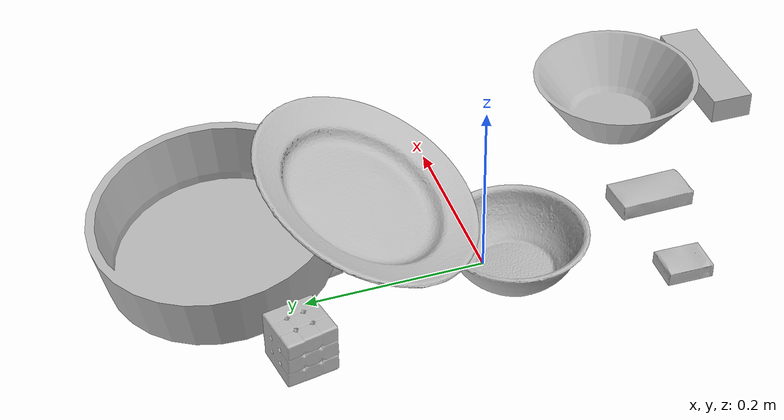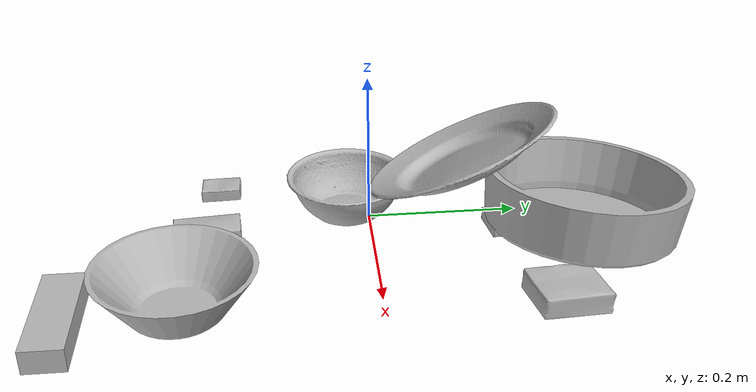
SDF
<sdf version="1.4">
  <world name="default">
    <light name="light1" type="point">
      <pose>0 0 1 0 0 0</pose>
      <diffuse>3 3 3 1</diffuse>
      <specular>3 3 3 1</specular>
    </light>
    <light name="light2" type="point">
      <pose>0 0.5 2 0 0 0</pose>
      <diffuse>1 1 1 1</diffuse>
      <specular>1 1 1 1</specular>
    </light>
    <light name="light3" type="point">
      <pose>0 0.5 2 0 0 0</pose>
      <diffuse>3 3 3 1</diffuse>
      <specular>3 3 3 1</specular>
    </light>
    <scene>
      <ambient>0.7 0.7 0.7</ambient>
    </scene>
    <model name="box1">
      <link name="link_box1">
        <collision name="default">
          <geometry>
            <mesh>
              <uri>model://sugar_box/collision_meshes/collision.obj</uri>
              <scale>0.5 0.5 0.5</scale>
            </mesh>
          </geometry>
          <surface>
            <friction>
              <ode>
                <mu>0.5</mu>
                <mu2>0.5</mu2>
              </ode>
            </friction>
          <contact>
        <ode>
            <max_vel>0</max_vel>
            <min_depth>0.0001</min_depth>
            <kp>1e8</kp>
        </ode>
    </contact></surface>
        </collision>
        <visual name="default">
          <geometry>
            <mesh>
              <uri>model://sugar_box/visual_meshes/visual.dae</uri>
              <scale>0.5 0.5 0.5</scale>
            </mesh>
          </geometry>
        </visual>
        <inertial>
          <mass>0.05968111753463745</mass>
          <pose>0.0005171863595023751 1.924554817378521e-05 -0.00018182402709499002 -0.00040462627153530444 0.0010506635220302928 0.002615378323275012</pose>
          <inertia>
            <ixx>1.2431535e-05</ixx>
            <iyy>4.0181283e-05</iyy>
            <izz>4.8101785e-05</izz>
            <ixy>0</ixy>
            <ixz>0</ixz>
            <iyz>0</iyz>
          </inertia>
        </inertial>
      </link>
      <pose>0.037669748067855835 -0.21472908556461334 0.011399300768971443 0.0007752500313289545 -0.023432416988059236 1.615498465160125</pose>
    </model>
    <model name="box11">
      <link name="link_box11">
        <collision name="default">
          <geometry>
            <mesh>
              <uri>model://cracker_box/collision_meshes/collision.obj</uri>
              <scale>0.25 0.25 0.25</scale>
            </mesh>
          </geometry>
          <surface>
            <friction>
              <ode>
                <mu>0.5</mu>
                <mu2>0.5</mu2>
              </ode>
            </friction>
          <contact>
        <ode>
            <max_vel>0</max_vel>
            <min_depth>0.0001</min_depth>
            <kp>1e8</kp>
        </ode>
    </contact></surface>
        </collision>
        <visual name="default">
          <geometry>
            <mesh>
              <uri>model://cracker_box/visual_meshes/visual.dae</uri>
              <scale>0.25 0.25 0.25</scale>
            </mesh>
          </geometry>
        </visual>
        <inertial>
          <mass>0.04741516709327698</mass>
          <pose>0.0002366035187151283 6.358561950037256e-05 -0.0004257383698131889 -0.00031620780351981393 -0.01110649053153066 0.0025467950031323855</pose>
          <inertia>
            <ixx>7.537689e-06</ixx>
            <iyy>1.2446206e-05</iyy>
            <izz>1.7761875e-05</izz>
            <ixy>0</ixy>
            <ixz>0</ixz>
            <iyz>0</iyz>
          </inertia>
        </inertial>
      </link>
      <pose>-0.0795268714427948 -0.2003558874130249 0.009120449423789978 -0.011788025121909585 -0.007367176819784792 1.5710181147674713</pose>
    </model>
    <model name="box2">
      <link name="link_box2">
        <collision name="default">
          <geometry>
            <mesh>
              <uri>model://jenga/collision_meshes/collision.obj</uri>
              <scale>1.0 1.0 1.0</scale>
            </mesh>
          </geometry>
          <surface>
            <friction>
              <ode>
                <mu>0.5</mu>
                <mu2>0.5</mu2>
              </ode>
            </friction>
          <contact>
        <ode>
            <max_vel>0</max_vel>
            <min_depth>0.0001</min_depth>
            <kp>1e8</kp>
        </ode>
    </contact></surface>
        </collision>
        <visual name="default">
          <geometry>
            <mesh>
              <uri>model://jenga/visual_meshes/visual.dae</uri>
              <scale>1.0 1.0 1.0</scale>
            </mesh>
          </geometry>
        </visual>
        <inertial>
          <mass>0.17569443583488464</mass>
          <pose>-2.502855807051674e-07 -0.00010250010382151231 -4.0923401684267446e-05 0.0 -7.342153480750062e-07 0.0</pose>
          <inertia>
            <ixx>4.8618913e-05</ixx>
            <iyy>0.00032944046</iyy>
            <izz>0.0003517057</izz>
            <ixy>0</ixy>
            <ixz>0</ixz>
            <iyz>0</iyz>
          </inertia>
        </inertial>
      </link>
      <pose>0.22621329128742218 -0.37519288063049316 0.014999995008111 1.2074997182644783e-08 3.913072392246924e-09 -2.351430521444544e-05</pose>
    </model>
    <model name="box21">
      <link name="link_box21">
        <collision name="default">
          <geometry>
            <mesh>
              <uri>model://rubiks_cube/collision_meshes/collision.obj</uri>
              <scale>1.0 1.0 1.0</scale>
            </mesh>
          </geometry>
          <surface>
            <friction>
              <ode>
                <mu>0.5</mu>
                <mu2>0.5</mu2>
              </ode>
            </friction>
          <contact>
        <ode>
            <max_vel>0</max_vel>
            <min_depth>0.0001</min_depth>
            <kp>1e8</kp>
        </ode>
    </contact></surface>
        </collision>
        <visual name="default">
          <geometry>
            <mesh>
              <uri>model://rubiks_cube/visual_meshes/visual.dae</uri>
              <scale>1.0 1.0 1.0</scale>
            </mesh>
          </geometry>
        </visual>
        <inertial>
          <mass>0.16427944600582123</mass>
          <pose>2.6721041649580002e-05 5.2569666877388954e-05 -7.2643156272533815e-06 -0.05467299197426534 -0.0981400693449792 -0.034455479534688374</pose>
          <inertia>
            <ixx>9.0775415e-05</ixx>
            <iyy>9.0352085e-05</iyy>
            <izz>9.152764e-05</izz>
            <ixy>0</ixy>
            <ixz>0</ixz>
            <iyz>0</iyz>
          </inertia>
        </inertial>
      </link>
      <pose>-0.08122877031564713 0.2255028486251831 0.028679020702838898 9.566650377329487e-08 5.9522758486269305e-08 -1.3680137713417952</pose>
    </model>
    <model name="box3">
      <link name="link_box3">
        <collision name="default">
          <geometry>
            <mesh>
              <uri>model://gelatin_box/collision_meshes/collision.obj</uri>
              <scale>1.0 1.0 1.0</scale>
            </mesh>
          </geometry>
          <surface>
            <friction>
              <ode>
                <mu>0.5</mu>
                <mu2>0.5</mu2>
              </ode>
            </friction>
          <contact>
        <ode>
            <max_vel>0</max_vel>
            <min_depth>0.0001</min_depth>
            <kp>1e8</kp>
        </ode>
    </contact></surface>
        </collision>
        <visual name="default">
          <geometry>
            <mesh>
              <uri>model://gelatin_box/visual_meshes/visual.dae</uri>
              <scale>1.0 1.0 1.0</scale>
            </mesh>
          </geometry>
        </visual>
        <inertial>
          <mass>0.21197354793548584</mass>
          <pose>0.0004319618456065655 0.00011156872642459348 -0.0003640321083366871 -0.0010503719594585892 -0.004755818227500045 0.016440553882781303</pose>
          <inertia>
            <ixx>0.00014963602</ixx>
            <iyy>0.00010688423</iyy>
            <izz>0.00022777937</izz>
            <ixy>0</ixy>
            <ixz>0</ixz>
            <iyz>0</iyz>
          </inertia>
        </inertial>
      </link>
      <pose>0.2272741049528122 0.2154339998960495 0.017164546996355057 0.06768367802501628 0.009957773664432505 -2.9827321919889114</pose>
    </model>
    <model name="box31">
      <link name="link_box31">
        <collision name="default">
          <geometry>
            <mesh>
              <uri>model://pudding_box/collision_meshes/collision.obj</uri>
              <scale>0.5 0.5 0.5</scale>
            </mesh>
          </geometry>
          <surface>
            <friction>
              <ode>
                <mu>0.5</mu>
                <mu2>0.5</mu2>
              </ode>
            </friction>
          <contact>
        <ode>
            <max_vel>0</max_vel>
            <min_depth>0.0001</min_depth>
            <kp>1e8</kp>
        </ode>
    </contact></surface>
        </collision>
        <visual name="default">
          <geometry>
            <mesh>
              <uri>model://pudding_box/visual_meshes/visual.dae</uri>
              <scale>0.5 0.5 0.5</scale>
            </mesh>
          </geometry>
        </visual>
        <inertial>
          <mass>0.056796859949827194</mass>
          <pose>0.00024474109522998333 0.0004033942532259971 -0.0002594413817860186 0.005213102251005844 -0.00660379641961884 0.02007983447872704</pose>
          <inertia>
            <ixx>1.605148e-05</ixx>
            <iyy>1.0799551e-05</iyy>
            <izz>2.3704206e-05</izz>
            <ixy>0</ixy>
            <ixz>0</ixz>
            <iyz>0</iyz>
          </inertia>
        </inertial>
      </link>
      <pose>0.05299760401248932 0.17416082322597504 0.012166076339781284 -0.03596302046049781 0.0826702135718744 1.6966054429759374</pose>
    </model>
    <model name="plate1">
      <link name="link_plate1">
        <collision name="default">
          <geometry>
            <mesh>
              <uri>model://pan_tefal/collision_meshes/collision.obj</uri>
              <scale>1.0 1.0 1.0</scale>
            </mesh>
          </geometry>
          <surface>
            <friction>
              <ode>
                <mu>0.5</mu>
                <mu2>0.5</mu2>
              </ode>
            </friction>
          <contact>
        <ode>
            <max_vel>0</max_vel>
            <min_depth>0.0001</min_depth>
            <kp>1e8</kp>
        </ode>
    </contact></surface>
        </collision>
        <visual name="default">
          <geometry>
            <mesh>
              <uri>model://pan_tefal/visual_meshes/visual.dae</uri>
              <scale>1.0 1.0 1.0</scale>
            </mesh>
          </geometry>
        </visual>
        <inertial>
          <mass>1.4752264022827148</mass>
          <pose>-0.0001800210156943649 3.278951771790162e-05 -0.008514936082065105 0.0008190241607511121 -0.0003301478392365544 -0.33184922825406304</pose>
          <inertia>
            <ixx>0.010183416</ixx>
            <iyy>0.01024907</iyy>
            <izz>0.018745707</izz>
            <ixy>0</ixy>
            <ixz>0</ixz>
            <iyz>0</iyz>
          </inertia>
        </inertial>
      </link>
      <pose>0.0791279748082161 0.27213186025619507 0.05394420772790909 0.12984454787957792 -0.03511973733573717 -2.1312360833353217</pose>
    </model>
    <model name="bowl1">
      <link name="link_bowl1">
        <collision name="default">
          <geometry>
            <mesh>
              <uri>model://bowl/collision_meshes/collision.obj</uri>
              <scale>1.0 1.0 1.0</scale>
            </mesh>
          </geometry>
          <surface>
            <friction>
              <ode>
                <mu>0.5</mu>
                <mu2>0.5</mu2>
              </ode>
            </friction>
          <contact>
        <ode>
            <max_vel>0</max_vel>
            <min_depth>0.0001</min_depth>
            <kp>1e8</kp>
        </ode>
    </contact></surface>
        </collision>
        <visual name="default">
          <geometry>
            <mesh>
              <uri>model://bowl/visual_meshes/visual.dae</uri>
              <scale>1.0 1.0 1.0</scale>
            </mesh>
          </geometry>
        </visual>
        <inertial>
          <mass>0.13335108757019043</mass>
          <pose>0.00020445126574486494 -0.0010302079608663917 -0.0008042646804824471 -0.01576397865263616 0.014546905041115984 0.7140477796865206</pose>
          <inertia>
            <ixx>0.000306318</ixx>
            <iyy>0.00029947367</iyy>
            <izz>0.00051533245</izz>
            <ixy>0</ixy>
            <ixz>0</ixz>
            <iyz>0</iyz>
          </inertia>
        </inertial>
      </link>
      <pose>-0.019399398937821388 -0.027695290744304657 0.027779951691627502 2.8398554416753353e-06 1.1920611857149188e-05 -0.8393390915289797</pose>
    </model>
    <model name="plate2">
      <link name="link_plate2">
        <collision name="default">
          <geometry>
            <mesh>
              <uri>model://plate/collision_meshes/collision.obj</uri>
              <scale>1.0 1.0 1.0</scale>
            </mesh>
          </geometry>
          <surface>
            <friction>
              <ode>
                <mu>0.5</mu>
                <mu2>0.5</mu2>
              </ode>
            </friction>
          <contact>
        <ode>
            <max_vel>0</max_vel>
            <min_depth>0.0001</min_depth>
            <kp>1e8</kp>
        </ode>
    </contact></surface>
        </collision>
        <visual name="default">
          <geometry>
            <mesh>
              <uri>model://plate/visual_meshes/visual.dae</uri>
              <scale>1.0 1.0 1.0</scale>
            </mesh>
          </geometry>
        </visual>
        <inertial>
          <mass>0.1753290891647339</mass>
          <pose>-0.0006044620531611145 0.0002782598021440208 -0.0010561987292021513 0.0022188066246853514 -0.003225466953145419 0.45260347799947726</pose>
          <inertia>
            <ixx>0.00082019315</ixx>
            <iyy>0.00081234827</iyy>
            <izz>0.0016041752</izz>
            <ixy>0</ixy>
            <ixz>0</ixz>
            <iyz>0</iyz>
          </inertia>
        </inertial>
      </link>
      <pose>0.03386538475751877 0.12179634720087051 0.10178246349096298 0.4574172800646047 0.005166121078148691 -0.507806368134807</pose>
    </model>
    <model name="bowl2">
      <link name="link_bowl2">
        <collision name="default">
          <geometry>
            <mesh>
              <uri>model://bowl_a/collision_meshes/collision.obj</uri>
              <scale>1.0 1.0 1.0</scale>
            </mesh>
          </geometry>
          <surface>
            <friction>
              <ode>
                <mu>0.5</mu>
                <mu2>0.5</mu2>
              </ode>
            </friction>
          <contact>
        <ode>
            <max_vel>0</max_vel>
            <min_depth>0.0001</min_depth>
            <kp>1e8</kp>
        </ode>
    </contact></surface>
        </collision>
        <visual name="default">
          <geometry>
            <mesh>
              <uri>model://bowl_a/visual_meshes/visual.dae</uri>
              <scale>1.0 1.0 1.0</scale>
            </mesh>
          </geometry>
        </visual>
        <inertial>
          <mass>0.4813200831413269</mass>
          <pose>0.0002786751138046384 4.731064836960286e-05 -0.0013765294570475817 -0.0009805320964546374 -0.0010938264681851768 -0.19124047933057892</pose>
          <inertia>
            <ixx>0.0013703406</ixx>
            <iyy>0.0013787533</iyy>
            <izz>0.0024372027</izz>
            <ixy>0</ixy>
            <ixz>0</ixz>
            <iyz>0</iyz>
          </inertia>
        </inertial>
      </link>
      <pose>0.20000745356082916 -0.2415337711572647 0.030382977798581123 -8.197541300438295e-07 -7.289564609786709e-08 -0.7390224503309484</pose>
    </model>
  <physics type="ode">
      <max_contacts>50</max_contacts>
      <ode>
        <solver>
          <type>quick</type>
          <iters>75</iters>
        </solver>
        <constraints>
          <contact_max_correcting_vel>0</contact_max_correcting_vel>
          <contact_surface_layer>0</contact_surface_layer>
        </constraints>
      </ode>
    </physics></world>
</sdf>
